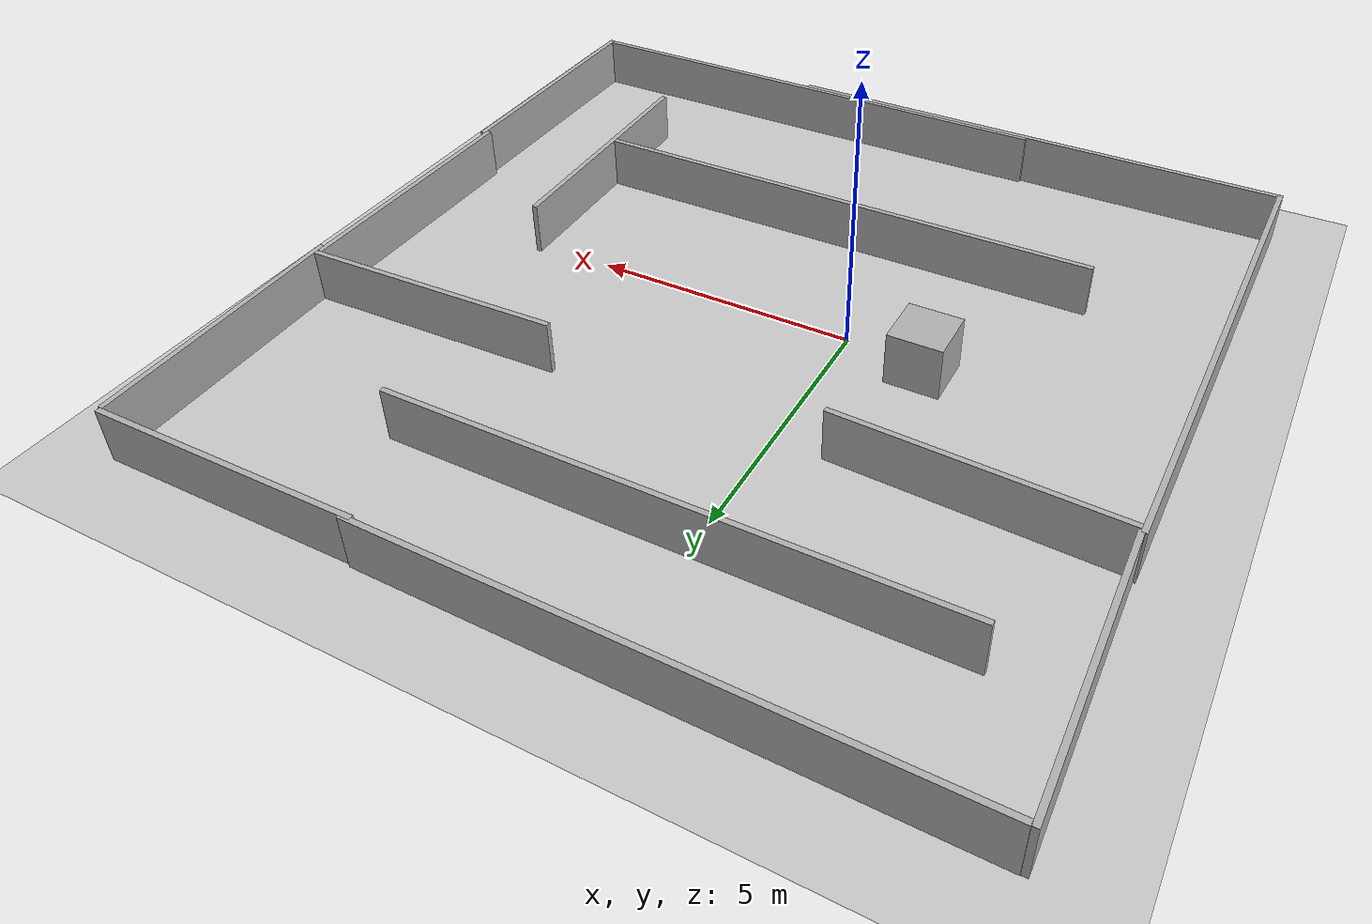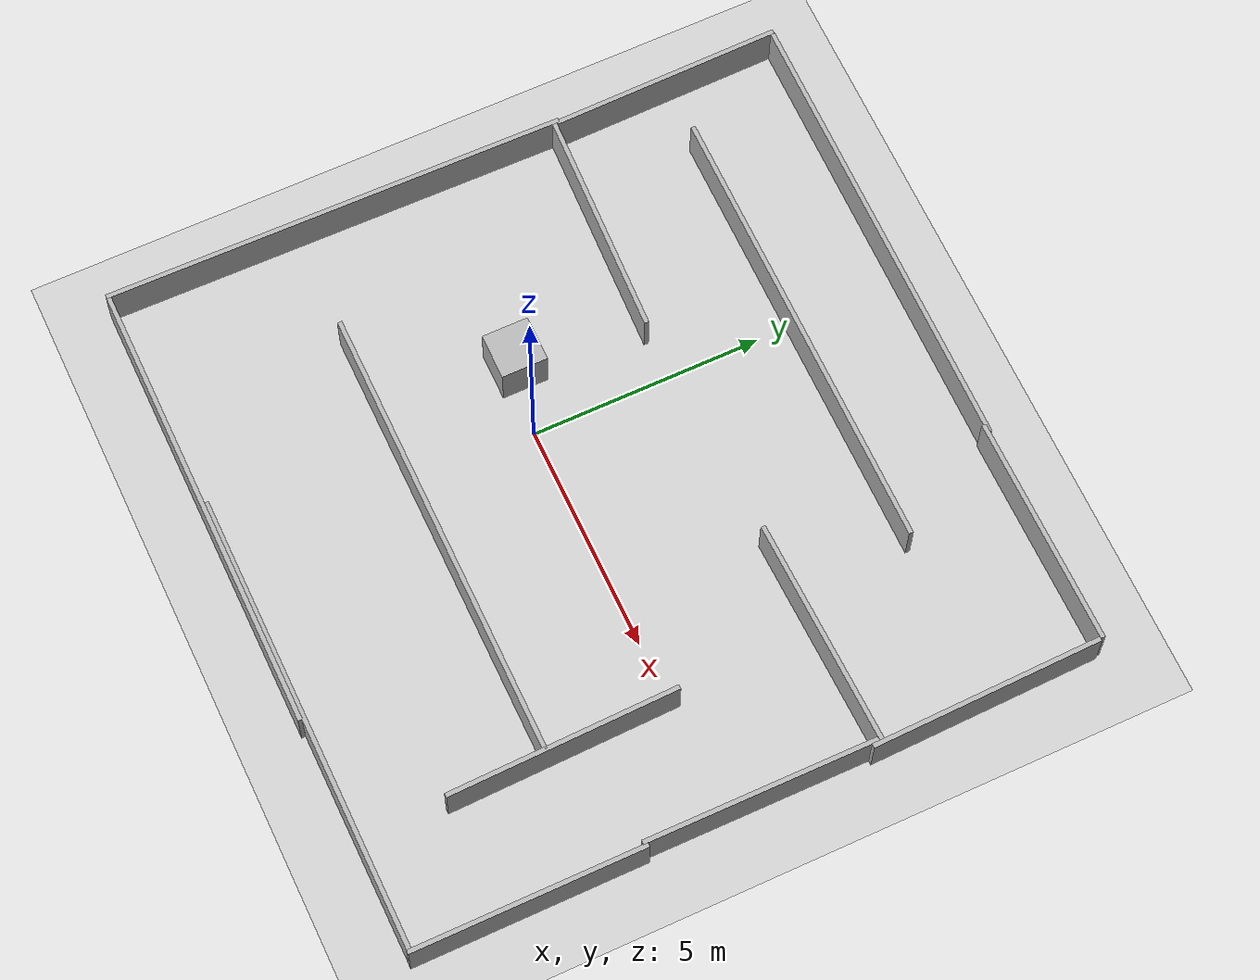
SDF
<sdf version='1.9'>
  <world name='empty'>
    <physics name='1ms' type='ignored'>
      <max_step_size>0.001</max_step_size>
      <real_time_factor>1</real_time_factor>
      <real_time_update_rate>1000</real_time_update_rate>
    </physics>
    <plugin name='gz::sim::systems::Physics' filename='ignition-gazebo-physics-system'/>
    <plugin name='gz::sim::systems::UserCommands' filename='ignition-gazebo-user-commands-system'/>
    <plugin name='gz::sim::systems::SceneBroadcaster' filename='ignition-gazebo-scene-broadcaster-system'/>
    <plugin name='gz::sim::systems::Contact' filename='ignition-gazebo-contact-system'/>
    <gravity>0 0 -9.8</gravity>
    <magnetic_field>6e-06 2.3e-05 -4.2e-05</magnetic_field>
    <atmosphere type='adiabatic'/>
    <scene>
      <ambient>0.4 0.4 0.4 1</ambient>
      <background>0.7 0.7 0.7 1</background>
      <shadows>true</shadows>
    </scene>
    <model name='ground_plane'>
      <static>true</static>
      <link name='link'>
        <collision name='collision'>
          <geometry>
            <plane>
              <normal>0 0 1</normal>
              <size>100 100</size>
            </plane>
          </geometry>
          <surface>
            <friction>
              <ode/>
            </friction>
            <bounce/>
            <contact/>
          </surface>
        </collision>
        <visual name='visual'>
          <geometry>
            <plane>
              <normal>0 0 1</normal>
              <size>100 100</size>
            </plane>
          </geometry>
          <material>
            <ambient>0.8 0.8 0.8 1</ambient>
            <diffuse>0.8 0.8 0.8 1</diffuse>
            <specular>0.8 0.8 0.8 1</specular>
          </material>
        </visual>
        <pose>0 0 0 0 -0 0</pose>
        <inertial>
          <pose>0 0 0 0 -0 0</pose>
          <mass>100</mass>
          <inertia>
            <ixx>1</ixx>
            <ixy>0</ixy>
            <ixz>0</ixz>
            <iyy>1</iyy>
            <iyz>0</iyz>
            <izz>1</izz>
          </inertia>
        </inertial>
        <enable_wind>false</enable_wind>
      </link>
      <pose>0 0 0 0 -0 0</pose>
      <self_collide>false</self_collide>
    </model>
    <model name='box'>
      <pose>6.48104 8.05519 0.500017 -0 -0.000344 1.57709</pose>
      <link name='box_link'>
        <inertial>
          <inertia>
            <ixx>16.666</ixx>
            <ixy>0</ixy>
            <ixz>0</ixz>
            <iyy>16.666</iyy>
            <iyz>0</iyz>
            <izz>16.666</izz>
          </inertia>
          <mass>100</mass>
          <pose>0 0 0 0 -0 0</pose>
        </inertial>
        <collision name='box_collision'>
          <geometry>
            <box>
              <size>0.1 5 1</size>
            </box>
          </geometry>
          <surface>
            <friction>
              <ode/>
            </friction>
            <bounce/>
            <contact/>
          </surface>
        </collision>
        <visual name='box_visual'>
          <geometry>
            <box>
              <size>0.1 5 1</size>
            </box>
          </geometry>
          <material>
            <ambient>0.3 0.3 0.3 1</ambient>
            <diffuse>0.7 0.7 0.7 1</diffuse>
            <specular>1 1 1 1</specular>
          </material>
        </visual>
        <pose>0 0 0 0 -0 0</pose>
        <enable_wind>false</enable_wind>
      </link>
      <static>false</static>
      <self_collide>false</self_collide>
    </model>
    <model name='box_0'>
      <pose>-3.37638 3.01187 0.5 -0 1e-06 -1.61296</pose>
      <link name='box_link'>
        <inertial>
          <inertia>
            <ixx>16.666</ixx>
            <ixy>0</ixy>
            <ixz>0</ixz>
            <iyy>16.666</iyy>
            <iyz>0</iyz>
            <izz>16.666</izz>
          </inertia>
          <mass>100</mass>
          <pose>0 0 0 0 -0 0</pose>
        </inertial>
        <collision name='box_collision'>
          <geometry>
            <box>
              <size>0.1 5 1</size>
            </box>
          </geometry>
          <surface>
            <friction>
              <ode/>
            </friction>
            <bounce/>
            <contact/>
          </surface>
        </collision>
        <visual name='box_visual'>
          <geometry>
            <box>
              <size>0.1 5 1</size>
            </box>
          </geometry>
          <material>
            <ambient>0.3 0.3 0.3 1</ambient>
            <diffuse>0.7 0.7 0.7 1</diffuse>
            <specular>1 1 1 1</specular>
          </material>
        </visual>
        <pose>0 0 0 0 -0 0</pose>
        <enable_wind>false</enable_wind>
      </link>
      <static>false</static>
      <self_collide>false</self_collide>
    </model>
    <model name='box_1'>
      <pose>1.51569 -2.71044 0.5 5e-06 -0 -1e-06</pose>
      <link name='box_link'>
        <inertial>
          <inertia>
            <ixx>16.666</ixx>
            <ixy>0</ixy>
            <ixz>0</ixz>
            <iyy>16.666</iyy>
            <iyz>0</iyz>
            <izz>16.666</izz>
          </inertia>
          <mass>100</mass>
          <pose>0 0 0 0 -0 0</pose>
        </inertial>
        <collision name='box_collision'>
          <geometry>
            <box>
              <size>10 0.1 1</size>
            </box>
          </geometry>
          <surface>
            <friction>
              <ode/>
            </friction>
            <bounce/>
            <contact/>
          </surface>
        </collision>
        <visual name='box_visual'>
          <geometry>
            <box>
              <size>10 0.1 1</size>
            </box>
          </geometry>
          <material>
            <ambient>0.3 0.3 0.3 1</ambient>
            <diffuse>0.7 0.7 0.7 1</diffuse>
            <specular>1 1 1 1</specular>
          </material>
        </visual>
        <pose>0 0 0 0 -0 0</pose>
        <enable_wind>false</enable_wind>
      </link>
      <static>false</static>
      <self_collide>false</self_collide>
    </model>
    <model name='box_2'>
      <pose>0.457247 5.6781 0.5 -0 -0 -0</pose>
      <link name='box_link'>
        <inertial>
          <inertia>
            <ixx>16.666</ixx>
            <ixy>0</ixy>
            <ixz>0</ixz>
            <iyy>16.666</iyy>
            <iyz>0</iyz>
            <izz>16.666</izz>
          </inertia>
          <mass>100</mass>
          <pose>0 0 0 0 -0 0</pose>
        </inertial>
        <collision name='box_collision'>
          <geometry>
            <box>
              <size>10 0.1 1</size>
            </box>
          </geometry>
          <surface>
            <friction>
              <ode/>
            </friction>
            <bounce/>
            <contact/>
          </surface>
        </collision>
        <visual name='box_visual'>
          <geometry>
            <box>
              <size>10 0.1 1</size>
            </box>
          </geometry>
          <material>
            <ambient>0.3 0.3 0.3 1</ambient>
            <diffuse>0.7 0.7 0.7 1</diffuse>
            <specular>1 1 1 1</specular>
          </material>
        </visual>
        <pose>0 0 0 0 -0 0</pose>
        <enable_wind>false</enable_wind>
      </link>
      <static>false</static>
      <self_collide>false</self_collide>
    </model>
    <model name='box_3'>
      <pose>-5.85378 5.6807 0.5 -0 1e-06 0.015288</pose>
      <link name='box_link'>
        <inertial>
          <inertia>
            <ixx>16.666</ixx>
            <ixy>0</ixy>
            <ixz>0</ixz>
            <iyy>16.666</iyy>
            <iyz>0</iyz>
            <izz>16.666</izz>
          </inertia>
          <mass>100</mass>
          <pose>0 0 0 0 -0 0</pose>
        </inertial>
        <collision name='box_collision'>
          <geometry>
            <box>
              <size>0.1 5 1</size>
            </box>
          </geometry>
          <surface>
            <friction>
              <ode/>
            </friction>
            <bounce/>
            <contact/>
          </surface>
        </collision>
        <visual name='box_visual'>
          <geometry>
            <box>
              <size>0.1 5 1</size>
            </box>
          </geometry>
          <material>
            <ambient>0.3 0.3 0.3 1</ambient>
            <diffuse>0.7 0.7 0.7 1</diffuse>
            <specular>1 1 1 1</specular>
          </material>
        </visual>
        <pose>0 0 0 0 -0 0</pose>
        <enable_wind>false</enable_wind>
      </link>
      <static>false</static>
      <self_collide>false</self_collide>
    </model>
    <model name='box_2_1'>
      <pose>-0.838031 8.1099 0.5 -7e-06 -0 -0.005778</pose>
      <link name='box_link'>
        <inertial>
          <inertia>
            <ixx>16.666</ixx>
            <ixy>0</ixy>
            <ixz>0</ixz>
            <iyy>16.666</iyy>
            <iyz>0</iyz>
            <izz>16.666</izz>
          </inertia>
          <mass>100</mass>
          <pose>0 0 0 0 -0 0</pose>
        </inertial>
        <collision name='box_collision'>
          <geometry>
            <box>
              <size>10 0.1 1</size>
            </box>
          </geometry>
          <surface>
            <friction>
              <ode/>
            </friction>
            <bounce/>
            <contact/>
          </surface>
        </collision>
        <visual name='box_visual'>
          <geometry>
            <box>
              <size>10 0.1 1</size>
            </box>
          </geometry>
          <material>
            <ambient>0.3 0.3 0.3 1</ambient>
            <diffuse>0.7 0.7 0.7 1</diffuse>
            <specular>1 1 1 1</specular>
          </material>
        </visual>
        <pose>0 0 0 0 -0 0</pose>
        <enable_wind>false</enable_wind>
      </link>
      <static>false</static>
      <self_collide>false</self_collide>
    </model>
    <model name='box_4'>
      <pose>9.0381 5.52122 0.500008 0 0.000161 0.023461</pose>
      <link name='box_link'>
        <inertial>
          <inertia>
            <ixx>16.666</ixx>
            <ixy>0</ixy>
            <ixz>0</ixz>
            <iyy>16.666</iyy>
            <iyz>0</iyz>
            <izz>16.666</izz>
          </inertia>
          <mass>100</mass>
          <pose>0 0 0 0 -0 0</pose>
        </inertial>
        <collision name='box_collision'>
          <geometry>
            <box>
              <size>0.1 5 1</size>
            </box>
          </geometry>
          <surface>
            <friction>
              <ode/>
            </friction>
            <bounce/>
            <contact/>
          </surface>
        </collision>
        <visual name='box_visual'>
          <geometry>
            <box>
              <size>0.1 5 1</size>
            </box>
          </geometry>
          <material>
            <ambient>0.3 0.3 0.3 1</ambient>
            <diffuse>0.7 0.7 0.7 1</diffuse>
            <specular>1 1 1 1</specular>
          </material>
        </visual>
        <pose>0 0 0 0 -0 0</pose>
        <enable_wind>false</enable_wind>
      </link>
      <static>false</static>
      <self_collide>false</self_collide>
    </model>
    <model name='box_4_1'>
      <pose>6.60353 3.16907 0.5 0 -0 -1.54114</pose>
      <link name='box_link'>
        <inertial>
          <inertia>
            <ixx>16.666</ixx>
            <ixy>0</ixy>
            <ixz>0</ixz>
            <iyy>16.666</iyy>
            <iyz>0</iyz>
            <izz>16.666</izz>
          </inertia>
          <mass>100</mass>
          <pose>0 0 0 0 -0 0</pose>
        </inertial>
        <collision name='box_collision'>
          <geometry>
            <box>
              <size>0.1 5 1</size>
            </box>
          </geometry>
          <surface>
            <friction>
              <ode/>
            </friction>
            <bounce/>
            <contact/>
          </surface>
        </collision>
        <visual name='box_visual'>
          <geometry>
            <box>
              <size>0.1 5 1</size>
            </box>
          </geometry>
          <material>
            <ambient>0.3 0.3 0.3 1</ambient>
            <diffuse>0.7 0.7 0.7 1</diffuse>
            <specular>1 1 1 1</specular>
          </material>
        </visual>
        <pose>0 0 0 0 -0 0</pose>
        <enable_wind>false</enable_wind>
      </link>
      <static>false</static>
      <self_collide>false</self_collide>
    </model>
    <model name='box_4_1_1'>
      <pose>6.51226 -2.32394 0.500001 -0 1.4e-05 0.024068</pose>
      <link name='box_link'>
        <inertial>
          <inertia>
            <ixx>16.666</ixx>
            <ixy>0</ixy>
            <ixz>0</ixz>
            <iyy>16.666</iyy>
            <iyz>0</iyz>
            <izz>16.666</izz>
          </inertia>
          <mass>100</mass>
          <pose>0 0 0 0 -0 0</pose>
        </inertial>
        <collision name='box_collision'>
          <geometry>
            <box>
              <size>0.1 5 1</size>
            </box>
          </geometry>
          <surface>
            <friction>
              <ode/>
            </friction>
            <bounce/>
            <contact/>
          </surface>
        </collision>
        <visual name='box_visual'>
          <geometry>
            <box>
              <size>0.1 5 1</size>
            </box>
          </geometry>
          <material>
            <ambient>0.3 0.3 0.3 1</ambient>
            <diffuse>0.7 0.7 0.7 1</diffuse>
            <specular>1 1 1 1</specular>
          </material>
        </visual>
        <pose>0 0 0 0 -0 0</pose>
        <enable_wind>false</enable_wind>
      </link>
      <static>false</static>
      <self_collide>false</self_collide>
    </model>
    <model name='box_4_2'>
      <pose>8.99904 0.688705 0.500002 0 -5e-05 -0.003204</pose>
      <link name='box_link'>
        <inertial>
          <inertia>
            <ixx>16.666</ixx>
            <ixy>0</ixy>
            <ixz>0</ixz>
            <iyy>16.666</iyy>
            <iyz>0</iyz>
            <izz>16.666</izz>
          </inertia>
          <mass>100</mass>
          <pose>0 0 0 0 -0 0</pose>
        </inertial>
        <collision name='box_collision'>
          <geometry>
            <box>
              <size>0.1 5 1</size>
            </box>
          </geometry>
          <surface>
            <friction>
              <ode/>
            </friction>
            <bounce/>
            <contact/>
          </surface>
        </collision>
        <visual name='box_visual'>
          <geometry>
            <box>
              <size>0.1 5 1</size>
            </box>
          </geometry>
          <material>
            <ambient>0.3 0.3 0.3 1</ambient>
            <diffuse>0.7 0.7 0.7 1</diffuse>
            <specular>1 1 1 1</specular>
          </material>
        </visual>
        <pose>0 0 0 0 -0 0</pose>
        <enable_wind>false</enable_wind>
      </link>
      <static>false</static>
      <self_collide>false</self_collide>
    </model>
    <model name='box_4_1_1_1'>
      <pose>9.08432 -4.21549 0.500004 0 9.1e-05 0.001292</pose>
      <link name='box_link'>
        <inertial>
          <inertia>
            <ixx>16.666</ixx>
            <ixy>0</ixy>
            <ixz>0</ixz>
            <iyy>16.666</iyy>
            <iyz>0</iyz>
            <izz>16.666</izz>
          </inertia>
          <mass>100</mass>
          <pose>0 0 0 0 -0 0</pose>
        </inertial>
        <collision name='box_collision'>
          <geometry>
            <box>
              <size>0.1 5 1</size>
            </box>
          </geometry>
          <surface>
            <friction>
              <ode/>
            </friction>
            <bounce/>
            <contact/>
          </surface>
        </collision>
        <visual name='box_visual'>
          <geometry>
            <box>
              <size>0.1 5 1</size>
            </box>
          </geometry>
          <material>
            <ambient>0.3 0.3 0.3 1</ambient>
            <diffuse>0.7 0.7 0.7 1</diffuse>
            <specular>1 1 1 1</specular>
          </material>
        </visual>
        <pose>0 0 0 0 -0 0</pose>
        <enable_wind>false</enable_wind>
      </link>
      <static>false</static>
      <self_collide>false</self_collide>
    </model>
    <model name='box_1_1'>
      <pose>4.03706 -6.65698 0.5 -4e-06 0 -0.000809</pose>
      <link name='box_link'>
        <inertial>
          <inertia>
            <ixx>16.666</ixx>
            <ixy>0</ixy>
            <ixz>0</ixz>
            <iyy>16.666</iyy>
            <iyz>0</iyz>
            <izz>16.666</izz>
          </inertia>
          <mass>100</mass>
          <pose>0 0 0 0 -0 0</pose>
        </inertial>
        <collision name='box_collision'>
          <geometry>
            <box>
              <size>10 0.1 1</size>
            </box>
          </geometry>
          <surface>
            <friction>
              <ode/>
            </friction>
            <bounce/>
            <contact/>
          </surface>
        </collision>
        <visual name='box_visual'>
          <geometry>
            <box>
              <size>10 0.1 1</size>
            </box>
          </geometry>
          <material>
            <ambient>0.3 0.3 0.3 1</ambient>
            <diffuse>0.7 0.7 0.7 1</diffuse>
            <specular>1 1 1 1</specular>
          </material>
        </visual>
        <pose>0 0 0 0 -0 0</pose>
        <enable_wind>false</enable_wind>
      </link>
      <static>false</static>
      <self_collide>false</self_collide>
    </model>
    <model name='box_5'>
      <pose>-1.48954 0.263595 0.5 0 0 -0</pose>
      <link name='box_link'>
        <inertial>
          <inertia>
            <ixx>0.16666</ixx>
            <ixy>0</ixy>
            <ixz>0</ixz>
            <iyy>0.16666</iyy>
            <iyz>0</iyz>
            <izz>0.16666</izz>
          </inertia>
          <mass>1</mass>
          <pose>0 0 0 0 -0 0</pose>
        </inertial>
        <collision name='box_collision'>
          <geometry>
            <box>
              <size>1 1 1</size>
            </box>
          </geometry>
          <surface>
            <friction>
              <ode/>
            </friction>
            <bounce/>
            <contact/>
          </surface>
        </collision>
        <visual name='box_visual'>
          <geometry>
            <box>
              <size>1 1 1</size>
            </box>
          </geometry>
          <material>
            <ambient>0.3 0.3 0.3 1</ambient>
            <diffuse>0.7 0.7 0.7 1</diffuse>
            <specular>1 1 1 1</specular>
          </material>
        </visual>
        <pose>0 0 0 0 -0 0</pose>
        <enable_wind>false</enable_wind>
      </link>
      <static>false</static>
      <self_collide>false</self_collide>
    </model>
    <model name='box_1_2'>
      <pose>-5.9209 -1.77367 0.500009 0.000203 0 -1.58376</pose>
      <link name='box_link'>
        <inertial>
          <inertia>
            <ixx>16.666</ixx>
            <ixy>0</ixy>
            <ixz>0</ixz>
            <iyy>16.666</iyy>
            <iyz>0</iyz>
            <izz>16.666</izz>
          </inertia>
          <mass>100</mass>
          <pose>0 0 0 0 -0 0</pose>
        </inertial>
        <collision name='box_collision'>
          <geometry>
            <box>
              <size>10 0.1 1</size>
            </box>
          </geometry>
          <surface>
            <friction>
              <ode/>
            </friction>
            <bounce/>
            <contact/>
          </surface>
        </collision>
        <visual name='box_visual'>
          <geometry>
            <box>
              <size>10 0.1 1</size>
            </box>
          </geometry>
          <material>
            <ambient>0.3 0.3 0.3 1</ambient>
            <diffuse>0.7 0.7 0.7 1</diffuse>
            <specular>1 1 1 1</specular>
          </material>
        </visual>
        <pose>0 0 0 0 -0 0</pose>
        <enable_wind>false</enable_wind>
      </link>
      <static>false</static>
      <self_collide>false</self_collide>
    </model>
    <model name='box_1_3'>
      <pose>-0.990176 -6.73599 0.500002 5.9e-05 0 -0.00081</pose>
      <link name='box_link'>
        <inertial>
          <inertia>
            <ixx>16.666</ixx>
            <ixy>0</ixy>
            <ixz>0</ixz>
            <iyy>16.666</iyy>
            <iyz>0</iyz>
            <izz>16.666</izz>
          </inertia>
          <mass>100</mass>
          <pose>0 0 0 0 -0 0</pose>
        </inertial>
        <collision name='box_collision'>
          <geometry>
            <box>
              <size>10 0.1 1</size>
            </box>
          </geometry>
          <surface>
            <friction>
              <ode/>
            </friction>
            <bounce/>
            <contact/>
          </surface>
        </collision>
        <visual name='box_visual'>
          <geometry>
            <box>
              <size>10 0.1 1</size>
            </box>
          </geometry>
          <material>
            <ambient>0.3 0.3 0.3 1</ambient>
            <diffuse>0.7 0.7 0.7 1</diffuse>
            <specular>1 1 1 1</specular>
          </material>
        </visual>
        <pose>0 0 0 0 -0 0</pose>
        <enable_wind>false</enable_wind>
      </link>
      <static>false</static>
      <self_collide>false</self_collide>
    </model>
    <light name='sun' type='directional'>
      <pose>0 0 10 0 -0 0</pose>
      <cast_shadows>true</cast_shadows>
      <intensity>1</intensity>
      <direction>-0.5 0.1 -0.9</direction>
      <diffuse>0.8 0.8 0.8 1</diffuse>
      <specular>0.2 0.2 0.2 1</specular>
      <attenuation>
        <range>1000</range>
        <linear>0.01</linear>
        <constant>0.90000000000000002</constant>
        <quadratic>0.001</quadratic>
      </attenuation>
      <spot>
        <inner_angle>0</inner_angle>
        <outer_angle>0</outer_angle>
        <falloff>0</falloff>
      </spot>
    </light>
  </world>
</sdf>
